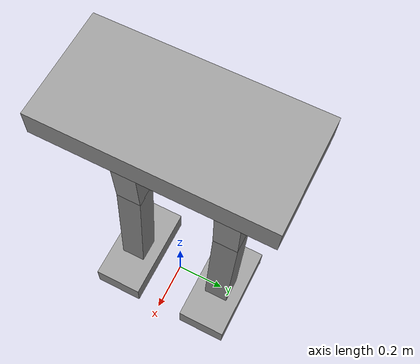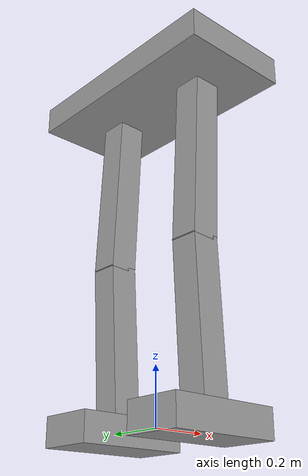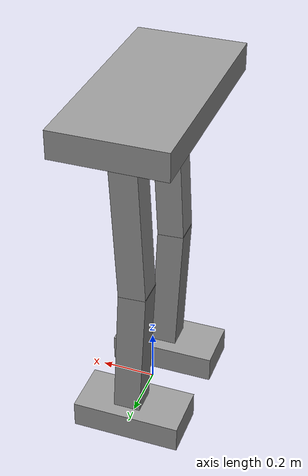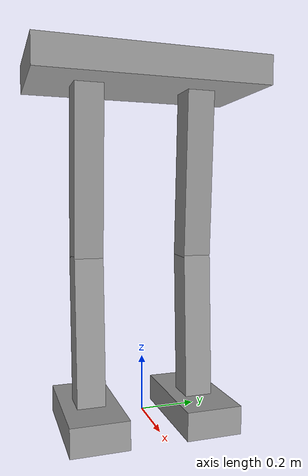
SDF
<?xml version='1.0'?>
<sdf version='1.6'>
  <model name='HumanoidRobot'>
    <link name='link_0'>
      <inertial>
        <mass>1</mass>
        <inertia>
          <ixx>0.166667</ixx>
          <ixy>0</ixy>
          <ixz>0</ixz>
          <iyy>0.166667</iyy>
          <iyz>0</iyz>
          <izz>0.166667</izz>
        </inertia>
        <pose frame=''>0 0 0 0 -0 0</pose>
      </inertial>
      <pose frame=''>0 0 1.2 0 -0 0</pose>
      <gravity>1</gravity>
      <self_collide>0</self_collide>
      <kinematic>0</kinematic>
      <enable_wind>0</enable_wind>
      <visual name='visual'>
        <pose frame=''>0 0 0 0 -0 0</pose>
        <geometry>
          <box>
            <size>0.4 0.8 0.1</size>
          </box>
        </geometry>
        <material>
          <lighting>1</lighting>
          <script>
            <uri>file://media/materials/scripts/gazebo.material</uri>
            <name>Gazebo/Grey</name>
          </script>
          <shader type='vertex'>
            <normal_map>__default__</normal_map>
          </shader>
          <ambient>0.3 0.3 0.3 1</ambient>
          <diffuse>0.7 0.7 0.7 1</diffuse>
          <specular>0.01 0.01 0.01 1</specular>
          <emissive>0 0 0 1</emissive>
        </material>
        <transparency>0</transparency>
        <cast_shadows>1</cast_shadows>
      </visual>
      <collision name='collision'>
        <laser_retro>0</laser_retro>
        <max_contacts>10</max_contacts>
        <pose frame=''>0 0 0 0 -0 0</pose>
        <geometry>
          <box>
            <size>0.4 0.8 0.1</size>
          </box>
        </geometry>
        <surface>
          <friction>
            <ode>
              <mu>1</mu>
              <mu2>1</mu2>
              <fdir1>0 0 0</fdir1>
              <slip1>0</slip1>
              <slip2>0</slip2>
            </ode>
            <torsional>
              <coefficient>1</coefficient>
              <patch_radius>0</patch_radius>
              <surface_radius>0</surface_radius>
              <use_patch_radius>1</use_patch_radius>
              <ode>
                <slip>0</slip>
              </ode>
            </torsional>
          </friction>
          <bounce>
            <restitution_coefficient>0</restitution_coefficient>
            <threshold>1e+06</threshold>
          </bounce>
          <contact>
            <collide_without_contact>0</collide_without_contact>
            <collide_without_contact_bitmask>1</collide_without_contact_bitmask>
            <collide_bitmask>1</collide_bitmask>
            <ode>
              <soft_cfm>0</soft_cfm>
              <soft_erp>0.2</soft_erp>
              <kp>1e+13</kp>
              <kd>1</kd>
              <max_vel>0.01</max_vel>
              <min_depth>0</min_depth>
            </ode>
            <bullet>
              <split_impulse>1</split_impulse>
              <split_impulse_penetration_threshold>-0.01</split_impulse_penetration_threshold>
              <soft_cfm>0</soft_cfm>
              <soft_erp>0.2</soft_erp>
              <kp>1e+13</kp>
              <kd>1</kd>
            </bullet>
          </contact>
        </surface>
      </collision>
    </link>
    <link name='link_0_clone'>
      <inertial>
        <mass>1</mass>
        <inertia>
          <ixx>0.166667</ixx>
          <ixy>0</ixy>
          <ixz>0</ixz>
          <iyy>0.166667</iyy>
          <iyz>0</iyz>
          <izz>0.166667</izz>
        </inertia>
        <pose frame=''>0 0 0 0 -0 0</pose>
      </inertial>
      <pose frame=''>0 0.2 0 0 -0 0</pose>
      <gravity>1</gravity>
      <self_collide>0</self_collide>
      <kinematic>0</kinematic>
      <enable_wind>0</enable_wind>
      <visual name='visual'>
        <pose frame=''>0 0 0 0 -0 0</pose>
        <geometry>
          <box>
            <size>0.4 0.2 0.1</size>
          </box>
        </geometry>
        <material>
          <lighting>1</lighting>
          <script>
            <uri>file://media/materials/scripts/gazebo.material</uri>
            <name>Gazebo/Grey</name>
          </script>
          <shader type='vertex'>
            <normal_map>__default__</normal_map>
          </shader>
          <ambient>0.3 0.3 0.3 1</ambient>
          <diffuse>0.7 0.7 0.7 1</diffuse>
          <specular>0.01 0.01 0.01 1</specular>
          <emissive>0 0 0 1</emissive>
        </material>
        <transparency>0</transparency>
        <cast_shadows>1</cast_shadows>
      </visual>
      <collision name='collision'>
        <laser_retro>0</laser_retro>
        <max_contacts>10</max_contacts>
        <pose frame=''>0 0 0 0 -0 0</pose>
        <geometry>
          <box>
            <size>0.4 0.2 0.1</size>
          </box>
        </geometry>
        <surface>
          <friction>
            <ode>
              <mu>1</mu>
              <mu2>1</mu2>
              <fdir1>0 0 0</fdir1>
              <slip1>0</slip1>
              <slip2>0</slip2>
            </ode>
            <torsional>
              <coefficient>1</coefficient>
              <patch_radius>0</patch_radius>
              <surface_radius>0</surface_radius>
              <use_patch_radius>1</use_patch_radius>
              <ode>
                <slip>0</slip>
              </ode>
            </torsional>
          </friction>
          <bounce>
            <restitution_coefficient>0</restitution_coefficient>
            <threshold>1e+06</threshold>
          </bounce>
          <contact>
            <collide_without_contact>0</collide_without_contact>
            <collide_without_contact_bitmask>1</collide_without_contact_bitmask>
            <collide_bitmask>1</collide_bitmask>
            <ode>
              <soft_cfm>0</soft_cfm>
              <soft_erp>0.2</soft_erp>
              <kp>1e+13</kp>
              <kd>1</kd>
              <max_vel>0.01</max_vel>
              <min_depth>0</min_depth>
            </ode>
            <bullet>
              <split_impulse>1</split_impulse>
              <split_impulse_penetration_threshold>-0.01</split_impulse_penetration_threshold>
              <soft_cfm>0</soft_cfm>
              <soft_erp>0.2</soft_erp>
              <kp>1e+13</kp>
              <kd>1</kd>
            </bullet>
          </contact>
        </surface>
      </collision>
    </link>
    <link name='link_0_clone_clone'>
      <inertial>
        <mass>1</mass>
        <inertia>
          <ixx>0.166667</ixx>
          <ixy>0</ixy>
          <ixz>0</ixz>
          <iyy>0.166667</iyy>
          <iyz>0</iyz>
          <izz>0.166667</izz>
        </inertia>
        <pose frame=''>0 0 0 0 -0 0</pose>
      </inertial>
      <pose frame=''>0 -0.2 0 0 -0 0</pose>
      <gravity>1</gravity>
      <self_collide>0</self_collide>
      <kinematic>0</kinematic>
      <enable_wind>0</enable_wind>
      <visual name='visual'>
        <pose frame=''>0 0 0 0 -0 0</pose>
        <geometry>
          <box>
            <size>0.4 0.2 0.1</size>
          </box>
        </geometry>
        <material>
          <lighting>1</lighting>
          <script>
            <uri>file://media/materials/scripts/gazebo.material</uri>
            <name>Gazebo/Grey</name>
          </script>
          <shader type='vertex'>
            <normal_map>__default__</normal_map>
          </shader>
          <ambient>0.3 0.3 0.3 1</ambient>
          <diffuse>0.7 0.7 0.7 1</diffuse>
          <specular>0.01 0.01 0.01 1</specular>
          <emissive>0 0 0 1</emissive>
        </material>
        <transparency>0</transparency>
        <cast_shadows>1</cast_shadows>
      </visual>
      <collision name='collision'>
        <laser_retro>0</laser_retro>
        <max_contacts>10</max_contacts>
        <pose frame=''>0 0 0 0 -0 0</pose>
        <geometry>
          <box>
            <size>0.4 0.2 0.1</size>
          </box>
        </geometry>
        <surface>
          <friction>
            <ode>
              <mu>1</mu>
              <mu2>1</mu2>
              <fdir1>0 0 0</fdir1>
              <slip1>0</slip1>
              <slip2>0</slip2>
            </ode>
            <torsional>
              <coefficient>1</coefficient>
              <patch_radius>0</patch_radius>
              <surface_radius>0</surface_radius>
              <use_patch_radius>1</use_patch_radius>
              <ode>
                <slip>0</slip>
              </ode>
            </torsional>
          </friction>
          <bounce>
            <restitution_coefficient>0</restitution_coefficient>
            <threshold>1e+06</threshold>
          </bounce>
          <contact>
            <collide_without_contact>0</collide_without_contact>
            <collide_without_contact_bitmask>1</collide_without_contact_bitmask>
            <collide_bitmask>1</collide_bitmask>
            <ode>
              <soft_cfm>0</soft_cfm>
              <soft_erp>0.2</soft_erp>
              <kp>1e+13</kp>
              <kd>1</kd>
              <max_vel>0.01</max_vel>
              <min_depth>0</min_depth>
            </ode>
            <bullet>
              <split_impulse>1</split_impulse>
              <split_impulse_penetration_threshold>-0.01</split_impulse_penetration_threshold>
              <soft_cfm>0</soft_cfm>
              <soft_erp>0.2</soft_erp>
              <kp>1e+13</kp>
              <kd>1</kd>
            </bullet>
          </contact>
        </surface>
      </collision>
    </link>
    <link name='link_1'>
      <inertial>
        <mass>1</mass>
        <inertia>
          <ixx>0.166667</ixx>
          <ixy>0</ixy>
          <ixz>0</ixz>
          <iyy>0.166667</iyy>
          <iyz>0</iyz>
          <izz>0.166667</izz>
        </inertia>
        <pose frame=''>0 0 0 0 -0 0</pose>
      </inertial>
      <pose frame=''>0 0.2 0.86 0 0.05 0</pose>
      <gravity>1</gravity>
      <self_collide>0</self_collide>
      <kinematic>0</kinematic>
      <enable_wind>0</enable_wind>
      <visual name='visual'>
        <pose frame=''>0 0 0 0 -0 0</pose>
        <geometry>
          <box>
            <size>0.1 0.1 0.6</size>
          </box>
        </geometry>
        <material>
          <lighting>1</lighting>
          <script>
            <uri>file://media/materials/scripts/gazebo.material</uri>
            <name>Gazebo/Grey</name>
          </script>
          <shader type='vertex'>
            <normal_map>__default__</normal_map>
          </shader>
          <ambient>0.3 0.3 0.3 1</ambient>
          <diffuse>0.7 0.7 0.7 1</diffuse>
          <specular>0.01 0.01 0.01 1</specular>
          <emissive>0 0 0 1</emissive>
        </material>
        <transparency>0</transparency>
        <cast_shadows>1</cast_shadows>
      </visual>
      <collision name='collision'>
        <laser_retro>0</laser_retro>
        <max_contacts>10</max_contacts>
        <pose frame=''>0 0 0 0 -0 0</pose>
        <geometry>
          <box>
            <size>0.1 0.1 0.6</size>
          </box>
        </geometry>
        <surface>
          <friction>
            <ode>
              <mu>1</mu>
              <mu2>1</mu2>
              <fdir1>0 0 0</fdir1>
              <slip1>0</slip1>
              <slip2>0</slip2>
            </ode>
            <torsional>
              <coefficient>1</coefficient>
              <patch_radius>0</patch_radius>
              <surface_radius>0</surface_radius>
              <use_patch_radius>1</use_patch_radius>
              <ode>
                <slip>0</slip>
              </ode>
            </torsional>
          </friction>
          <bounce>
            <restitution_coefficient>0</restitution_coefficient>
            <threshold>1e+06</threshold>
          </bounce>
          <contact>
            <collide_without_contact>0</collide_without_contact>
            <collide_without_contact_bitmask>1</collide_without_contact_bitmask>
            <collide_bitmask>1</collide_bitmask>
            <ode>
              <soft_cfm>0</soft_cfm>
              <soft_erp>0.2</soft_erp>
              <kp>1e+13</kp>
              <kd>1</kd>
              <max_vel>0.01</max_vel>
              <min_depth>0</min_depth>
            </ode>
            <bullet>
              <split_impulse>1</split_impulse>
              <split_impulse_penetration_threshold>-0.01</split_impulse_penetration_threshold>
              <soft_cfm>0</soft_cfm>
              <soft_erp>0.2</soft_erp>
              <kp>1e+13</kp>
              <kd>1</kd>
            </bullet>
          </contact>
        </surface>
      </collision>
    </link>
    <link name='link_1_clone'>
      <inertial>
        <mass>1</mass>
        <inertia>
          <ixx>0.166667</ixx>
          <ixy>0</ixy>
          <ixz>0</ixz>
          <iyy>0.166667</iyy>
          <iyz>0</iyz>
          <izz>0.166667</izz>
        </inertia>
        <pose frame=''>0 0 0 0 -0 0</pose>
      </inertial>
      <pose frame=''>0 -0.2 0.86 0 0.05 0</pose>
      <gravity>1</gravity>
      <self_collide>0</self_collide>
      <kinematic>0</kinematic>
      <enable_wind>0</enable_wind>
      <visual name='visual'>
        <pose frame=''>0 0 0 0 -0 0</pose>
        <geometry>
          <box>
            <size>0.1 0.1 0.6</size>
          </box>
        </geometry>
        <material>
          <lighting>1</lighting>
          <script>
            <uri>file://media/materials/scripts/gazebo.material</uri>
            <name>Gazebo/Grey</name>
          </script>
          <shader type='vertex'>
            <normal_map>__default__</normal_map>
          </shader>
          <ambient>0.3 0.3 0.3 1</ambient>
          <diffuse>0.7 0.7 0.7 1</diffuse>
          <specular>0.01 0.01 0.01 1</specular>
          <emissive>0 0 0 1</emissive>
        </material>
        <transparency>0</transparency>
        <cast_shadows>1</cast_shadows>
      </visual>
      <collision name='collision'>
        <laser_retro>0</laser_retro>
        <max_contacts>10</max_contacts>
        <pose frame=''>0 0 0 0 -0 0</pose>
        <geometry>
          <box>
            <size>0.1 0.1 0.6</size>
          </box>
        </geometry>
        <surface>
          <friction>
            <ode>
              <mu>1</mu>
              <mu2>1</mu2>
              <fdir1>0 0 0</fdir1>
              <slip1>0</slip1>
              <slip2>0</slip2>
            </ode>
            <torsional>
              <coefficient>1</coefficient>
              <patch_radius>0</patch_radius>
              <surface_radius>0</surface_radius>
              <use_patch_radius>1</use_patch_radius>
              <ode>
                <slip>0</slip>
              </ode>
            </torsional>
          </friction>
          <bounce>
            <restitution_coefficient>0</restitution_coefficient>
            <threshold>1e+06</threshold>
          </bounce>
          <contact>
            <collide_without_contact>0</collide_without_contact>
            <collide_without_contact_bitmask>1</collide_without_contact_bitmask>
            <collide_bitmask>1</collide_bitmask>
            <ode>
              <soft_cfm>0</soft_cfm>
              <soft_erp>0.2</soft_erp>
              <kp>1e+13</kp>
              <kd>1</kd>
              <max_vel>0.01</max_vel>
              <min_depth>0</min_depth>
            </ode>
            <bullet>
              <split_impulse>1</split_impulse>
              <split_impulse_penetration_threshold>-0.01</split_impulse_penetration_threshold>
              <soft_cfm>0</soft_cfm>
              <soft_erp>0.2</soft_erp>
              <kp>1e+13</kp>
              <kd>1</kd>
            </bullet>
          </contact>
        </surface>
      </collision>
    </link>
    <link name='link_1_clone_0'>
      <inertial>
        <mass>1</mass>
        <inertia>
          <ixx>0.166667</ixx>
          <ixy>0</ixy>
          <ixz>0</ixz>
          <iyy>0.166667</iyy>
          <iyz>0</iyz>
          <izz>0.166667</izz>
        </inertia>
        <pose frame=''>0 0 0 0 -0 0</pose>
      </inertial>
      <pose frame=''>0 0.2 0.27 0 -0.05 0</pose>
      <gravity>1</gravity>
      <self_collide>0</self_collide>
      <kinematic>0</kinematic>
      <enable_wind>0</enable_wind>
      <visual name='visual'>
        <pose frame=''>0 0 0 0 -0 0</pose>
        <geometry>
          <box>
            <size>0.1 0.1 0.6</size>
          </box>
        </geometry>
        <material>
          <lighting>1</lighting>
          <script>
            <uri>file://media/materials/scripts/gazebo.material</uri>
            <name>Gazebo/Grey</name>
          </script>
          <shader type='vertex'>
            <normal_map>__default__</normal_map>
          </shader>
          <ambient>0.3 0.3 0.3 1</ambient>
          <diffuse>0.7 0.7 0.7 1</diffuse>
          <specular>0.01 0.01 0.01 1</specular>
          <emissive>0 0 0 1</emissive>
        </material>
        <transparency>0</transparency>
        <cast_shadows>1</cast_shadows>
      </visual>
      <collision name='collision'>
        <laser_retro>0</laser_retro>
        <max_contacts>10</max_contacts>
        <pose frame=''>0 0 0 0 -0 0</pose>
        <geometry>
          <box>
            <size>0.1 0.1 0.6</size>
          </box>
        </geometry>
        <surface>
          <friction>
            <ode>
              <mu>1</mu>
              <mu2>1</mu2>
              <fdir1>0 0 0</fdir1>
              <slip1>0</slip1>
              <slip2>0</slip2>
            </ode>
            <torsional>
              <coefficient>1</coefficient>
              <patch_radius>0</patch_radius>
              <surface_radius>0</surface_radius>
              <use_patch_radius>1</use_patch_radius>
              <ode>
                <slip>0</slip>
              </ode>
            </torsional>
          </friction>
          <bounce>
            <restitution_coefficient>0</restitution_coefficient>
            <threshold>1e+06</threshold>
          </bounce>
          <contact>
            <collide_without_contact>0</collide_without_contact>
            <collide_without_contact_bitmask>1</collide_without_contact_bitmask>
            <collide_bitmask>1</collide_bitmask>
            <ode>
              <soft_cfm>0</soft_cfm>
              <soft_erp>0.2</soft_erp>
              <kp>1e+13</kp>
              <kd>1</kd>
              <max_vel>0.01</max_vel>
              <min_depth>0</min_depth>
            </ode>
            <bullet>
              <split_impulse>1</split_impulse>
              <split_impulse_penetration_threshold>-0.01</split_impulse_penetration_threshold>
              <soft_cfm>0</soft_cfm>
              <soft_erp>0.2</soft_erp>
              <kp>1e+13</kp>
              <kd>1</kd>
            </bullet>
          </contact>
        </surface>
      </collision>
    </link>
    <link name='link_1_clone_0_clone'>
      <inertial>
        <mass>1</mass>
        <inertia>
          <ixx>0.166667</ixx>
          <ixy>0</ixy>
          <ixz>0</ixz>
          <iyy>0.166667</iyy>
          <iyz>0</iyz>
          <izz>0.166667</izz>
        </inertia>
        <pose frame=''>0 0 0 0 -0 0</pose>
      </inertial>
      <pose frame=''>0 -0.2 0.27 0 -0.05 0</pose>
      <gravity>1</gravity>
      <self_collide>0</self_collide>
      <kinematic>0</kinematic>
      <enable_wind>0</enable_wind>
      <visual name='visual'>
        <pose frame=''>0 0 0 0 -0 0</pose>
        <geometry>
          <box>
            <size>0.1 0.1 0.6</size>
          </box>
        </geometry>
        <material>
          <lighting>1</lighting>
          <script>
            <uri>file://media/materials/scripts/gazebo.material</uri>
            <name>Gazebo/Grey</name>
          </script>
          <shader type='vertex'>
            <normal_map>__default__</normal_map>
          </shader>
          <ambient>0.3 0.3 0.3 1</ambient>
          <diffuse>0.7 0.7 0.7 1</diffuse>
          <specular>0.01 0.01 0.01 1</specular>
          <emissive>0 0 0 1</emissive>
        </material>
        <transparency>0</transparency>
        <cast_shadows>1</cast_shadows>
      </visual>
      <collision name='collision'>
        <laser_retro>0</laser_retro>
        <max_contacts>10</max_contacts>
        <pose frame=''>0 0 0 0 -0 0</pose>
        <geometry>
          <box>
            <size>0.1 0.1 0.6</size>
          </box>
        </geometry>
        <surface>
          <friction>
            <ode>
              <mu>1</mu>
              <mu2>1</mu2>
              <fdir1>0 0 0</fdir1>
              <slip1>0</slip1>
              <slip2>0</slip2>
            </ode>
            <torsional>
              <coefficient>1</coefficient>
              <patch_radius>0</patch_radius>
              <surface_radius>0</surface_radius>
              <use_patch_radius>1</use_patch_radius>
              <ode>
                <slip>0</slip>
              </ode>
            </torsional>
          </friction>
          <bounce>
            <restitution_coefficient>0</restitution_coefficient>
            <threshold>1e+06</threshold>
          </bounce>
          <contact>
            <collide_without_contact>0</collide_without_contact>
            <collide_without_contact_bitmask>1</collide_without_contact_bitmask>
            <collide_bitmask>1</collide_bitmask>
            <ode>
              <soft_cfm>0</soft_cfm>
              <soft_erp>0.2</soft_erp>
              <kp>1e+13</kp>
              <kd>1</kd>
              <max_vel>0.01</max_vel>
              <min_depth>0</min_depth>
            </ode>
            <bullet>
              <split_impulse>1</split_impulse>
              <split_impulse_penetration_threshold>-0.01</split_impulse_penetration_threshold>
              <soft_cfm>0</soft_cfm>
              <soft_erp>0.2</soft_erp>
              <kp>1e+13</kp>
              <kd>1</kd>
            </bullet>
          </contact>
        </surface>
      </collision>
    </link>
    <joint name='link_0_JOINT_0' type='fixed'>
      <parent>link_0</parent>
      <child>link_1_clone</child>
      <pose frame=''>0 0 0 0 -0 0</pose>
      <physics>
        <ode>
          <limit>
            <cfm>0</cfm>
            <erp>0.2</erp>
          </limit>
          <suspension>
            <cfm>0</cfm>
            <erp>0.2</erp>
          </suspension>
        </ode>
      </physics>
    </joint>
    <joint name='link_0_JOINT_1' type='fixed'>
      <parent>link_0</parent>
      <child>link_1</child>
      <pose frame=''>0 0 0 0 -0 0</pose>
      <physics>
        <ode>
          <limit>
            <cfm>0</cfm>
            <erp>0.2</erp>
          </limit>
          <suspension>
            <cfm>0</cfm>
            <erp>0.2</erp>
          </suspension>
        </ode>
      </physics>
    </joint>
    <joint name='link_1_JOINT_3' type='fixed'>
      <parent>link_1</parent>
      <child>link_1_clone_0</child>
      <pose frame=''>0 0 0 0 -0 0</pose>
      <physics>
        <ode>
          <limit>
            <cfm>0</cfm>
            <erp>0.2</erp>
          </limit>
          <suspension>
            <cfm>0</cfm>
            <erp>0.2</erp>
          </suspension>
        </ode>
      </physics>
    </joint>
    <joint name='link_1_clone_0_JOINT_5' type='fixed'>
      <parent>link_1_clone_0</parent>
      <child>link_0_clone</child>
      <pose frame=''>0 0 0 0 -0 0</pose>
      <physics>
        <ode>
          <limit>
            <cfm>0</cfm>
            <erp>0.2</erp>
          </limit>
          <suspension>
            <cfm>0</cfm>
            <erp>0.2</erp>
          </suspension>
        </ode>
      </physics>
    </joint>
    <joint name='link_1_clone_0_clone_JOINT_4' type='fixed'>
      <parent>link_1_clone_0_clone</parent>
      <child>link_0_clone_clone</child>
      <pose frame=''>0 0 0 0 -0 0</pose>
      <physics>
        <ode>
          <limit>
            <cfm>0</cfm>
            <erp>0.2</erp>
          </limit>
          <suspension>
            <cfm>0</cfm>
            <erp>0.2</erp>
          </suspension>
        </ode>
      </physics>
    </joint>
    <joint name='link_1_clone_JOINT_2' type='fixed'>
      <parent>link_1_clone</parent>
      <child>link_1_clone_0_clone</child>
      <pose frame=''>0 0 0 0 -0 0</pose>
      <physics>
        <ode>
          <limit>
            <cfm>0</cfm>
            <erp>0.2</erp>
          </limit>
          <suspension>
            <cfm>0</cfm>
            <erp>0.2</erp>
          </suspension>
        </ode>
      </physics>
    </joint>
    <static>0</static>
    <allow_auto_disable>1</allow_auto_disable>
  </model>
</sdf>
